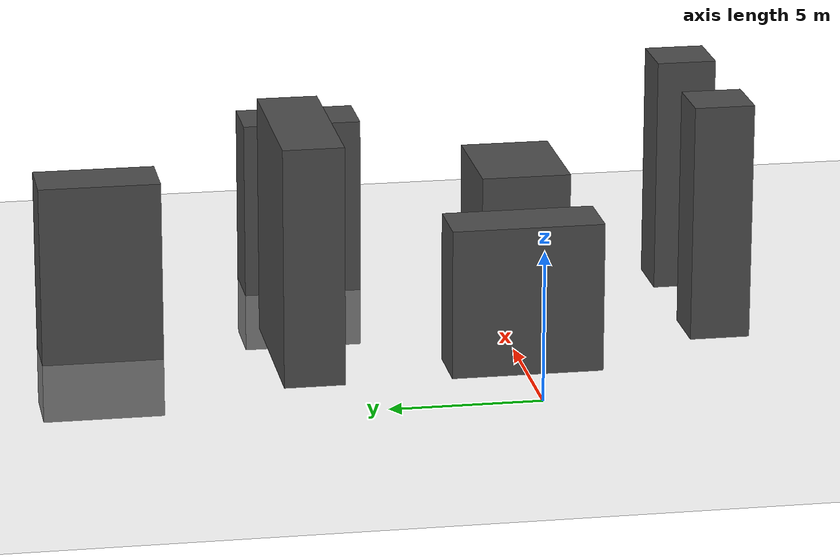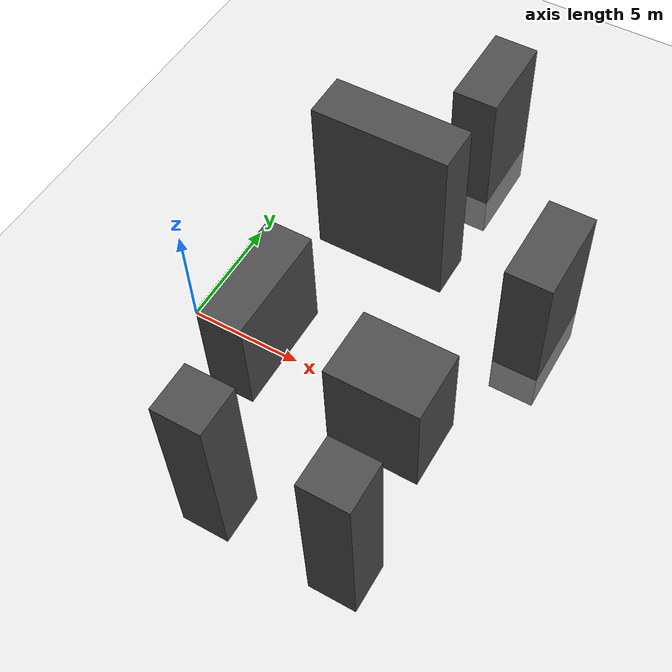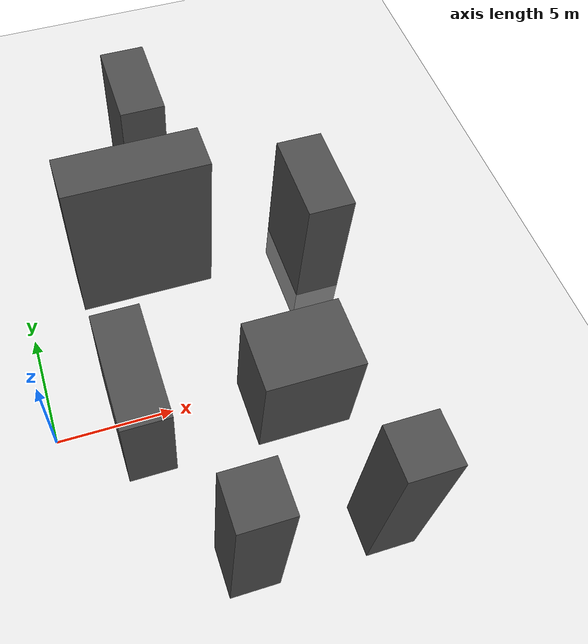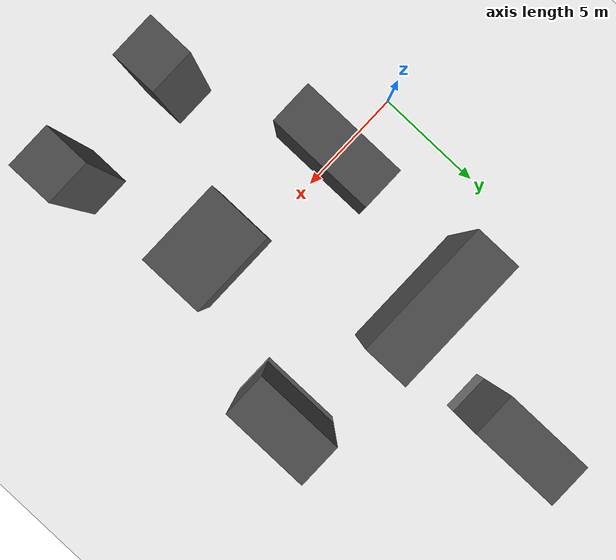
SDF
<sdf version='1.6'>
  <world name='default'>
    <light name='sun' type='directional'>
      <cast_shadows>1</cast_shadows>
      <pose frame=''>0 0 10 0 -0 0</pose>
      <diffuse>0.8 0.8 0.8 1</diffuse>
      <specular>0.2 0.2 0.2 1</specular>
      <attenuation>
        <range>1000</range>
        <constant>0.9</constant>
        <linear>0.01</linear>
        <quadratic>0.001</quadratic>
      </attenuation>
      <direction>-0.5 0.1 -0.9</direction>
    </light>
    <model name='ground_plane'>
      <static>1</static>
      <link name='link'>
        <collision name='collision'>
          <geometry>
            <plane>
              <normal>0 0 1</normal>
              <size>100 100</size>
            </plane>
          </geometry>
          <surface>
            <friction>
              <ode>
                <mu>100</mu>
                <mu2>50</mu2>
              </ode>
              <torsional>
                <ode/>
              </torsional>
            </friction>
            <contact>
              <ode/>
            </contact>
            <bounce/>
          </surface>
          <max_contacts>10</max_contacts>
        </collision>
        <visual name='visual'>
          <cast_shadows>0</cast_shadows>
          <geometry>
            <plane>
              <normal>0 0 1</normal>
              <size>100 100</size>
            </plane>
          </geometry>
          <material>
            <script>
              <uri>file://media/materials/scripts/gazebo.material</uri>
              <name>Gazebo/Grey</name>
            </script>
          </material>
        </visual>
        <self_collide>0</self_collide>
        <kinematic>0</kinematic>
      </link>
    </model>
    <gravity>0 0 -9.8</gravity>
    <magnetic_field>6e-06 2.3e-05 -4.2e-05</magnetic_field>
    <atmosphere type='adiabatic'/>
    <physics name='default_physics' default='0' type='ode'>
      <max_step_size>0.004</max_step_size>
      <real_time_factor>1</real_time_factor>
      <real_time_update_rate>250</real_time_update_rate>
    </physics>
    <scene>
      <ambient>0.4 0.4 0.4 1</ambient>
      <background>0.7 0.7 0.7 1</background>
      <shadows>1</shadows>
    </scene>
    <spherical_coordinates>
      <surface_model>EARTH_WGS84</surface_model>
      <latitude_deg>0</latitude_deg>
      <longitude_deg>0</longitude_deg>
      <elevation>0</elevation>
      <heading_deg>0</heading_deg>
    </spherical_coordinates>

    <model name="box1">
      <static>true</static>
      <link name='box'>
        <pose>3.5 0 2.5 0 0 0</pose>
        <collision name='collision'>
          <geometry>
            <box>
              <size>2 5 5</size>
            </box>
          </geometry>
        </collision>
        <visual name='visual'>
          <geometry>
            <box>
              <size>2 5 5</size>
            </box>
          </geometry>
          <material>
            <ambient>0.3 0.3 0.3 1</ambient>
            <diffuse>0.3 0.3 0.3 1</diffuse>
            <specular>0.1 0.1 0.1 1</specular>
            <emissive>0 0 0 0</emissive>
          </material>
        </visual>
      </link>
    </model>

    <model name="box2">
      <static>true</static>
      <link name='box'>
        <pose>5.5 7 4 0 0 0</pose>
        <collision name='collision'>
          <geometry>
            <box>
              <size>6 2 8</size>
            </box>
          </geometry>
        </collision>
        <visual name='visual'>
          <geometry>
            <box>
              <size>6 2 8</size>
            </box>
          </geometry>
          <material>
            <ambient>0.3 0.3 0.3 1</ambient>
            <diffuse>0.3 0.3 0.3 1</diffuse>
            <specular>0.1 0.1 0.1 1</specular>
            <emissive>0 0 0 0</emissive>
          </material>
        </visual>
      </link>
    </model>

    <model name="box3">
      <static>true</static>
      <link name='box'>
        <pose>10 -1 2.5 0 0 0</pose>
        <collision name='collision'>
          <geometry>
            <box>
              <size>4 3 5</size>
            </box>
          </geometry>
        </collision>
        <visual name='visual'>
          <geometry>
            <box>
              <size>4 3 5</size>
            </box>
          </geometry>
          <material>
            <ambient>0.3 0.3 0.3 1</ambient>
            <diffuse>0.3 0.3 0.3 1</diffuse>
            <specular>0.1 0.1 0.1 1</specular>
            <emissive>0 0 0 0</emissive>
          </material>
        </visual>
      </link>
    </model>

    <model name="box4">
      <static>true</static>
      <link name='box'>
        <pose>13 6 2 0 0 0</pose>
        <collision name='collision'>
          <geometry>
            <box>
              <size>2 4 8</size>
            </box>
          </geometry>
        </collision>
        <visual name='visual'>
          <geometry>
            <box>
              <size>2 4 8</size>
            </box>
          </geometry>
          <material>
            <ambient>0.3 0.3 0.3 1</ambient>
            <diffuse>0.3 0.3 0.3 1</diffuse>
            <specular>0.1 0.1 0.1 1</specular>
            <emissive>0 0 0 0</emissive>
          </material>
        </visual>
      </link>
    </model>

    <model name="box5">
      <static>true</static>
      <link name='box'>
        <pose>6 -7 4 0 0 0</pose>
        <collision name='collision'>
          <geometry>
            <box>
              <size>2 2 8</size>
            </box>
          </geometry>
        </collision>
        <visual name='visual'>
          <geometry>
            <box>
              <size>2 2 8</size>
            </box>
          </geometry>
          <material>
            <ambient>0.3 0.3 0.3 1</ambient>
            <diffuse>0.3 0.3 0.3 1</diffuse>
            <specular>0.1 0.1 0.1 1</specular>
            <emissive>0 0 0 0</emissive>
          </material>
        </visual>
      </link>
    </model>

    <model name="box6">
      <static>true</static>
      <link name='box'>
        <pose>7 13.5 2 0 0 0</pose>
        <collision name='collision'>
          <geometry>
            <box>
              <size>2 4 8</size>
            </box>
          </geometry>
        </collision>
        <visual name='visual'>
          <geometry>
            <box>
              <size>2 4 8</size>
            </box>
          </geometry>
          <material>
            <ambient>0.3 0.3 0.3 1</ambient>
            <diffuse>0.3 0.3 0.3 1</diffuse>
            <specular>0.1 0.1 0.1 1</specular>
            <emissive>0 0 0 0</emissive>
          </material>
        </visual>
      </link>
    </model>

    <model name="box7">
      <static>true</static>
      <link name='box'>
        <pose>11.5 -7 4 0 0 0</pose>
        <collision name='collision'>
          <geometry>
            <box>
              <size>2 2 8</size>
            </box>
          </geometry>
        </collision>
        <visual name='visual'>
          <geometry>
            <box>
              <size>2 2 8</size>
            </box>
          </geometry>
          <material>
            <ambient>0.3 0.3 0.3 1</ambient>
            <diffuse>0.3 0.3 0.3 1</diffuse>
            <specular>0.1 0.1 0.1 1</specular>
            <emissive>0 0 0 0</emissive>
          </material>
        </visual>
      </link>
    </model>

  </world>
</sdf>
